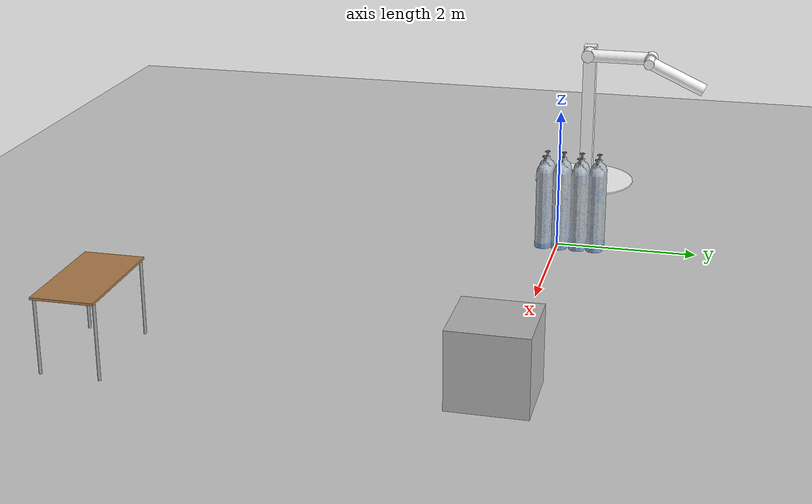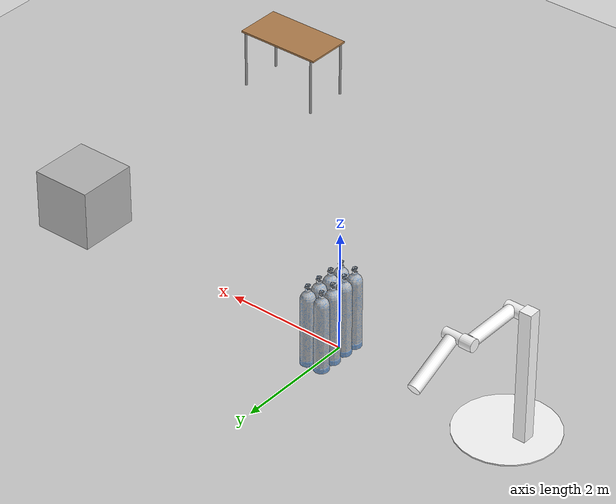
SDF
<sdf version="1.7">
 <world name="default">
  <light type="point" name="point">
   <pose>0 2 2 0 0 0</pose>
   <diffuse>1 0 0 1</diffuse>
   <specular>.1 .1 .1 1</specular>
   <attenuation>
    <range>20</range>
    <linear>0.2</linear>
    <constant>0.8</constant>
    <quadratic>0.01</quadratic>
   </attenuation>
   <cast_shadows>false</cast_shadows>
  </light>
  <include><uri>model://sun</uri></include>
  <include><uri>model://ground_plane</uri></include>
  <include><uri>model://gas</uri></include>
  <include>
   <uri>model://double_pendulum_with_base</uri>
   <name>pendulum_thick_mud</name>
   <pose>-3.0 0 0 0 0 0</pose>
  </include>
  <include><uri>model://table</uri><name>table</name><pose>5.0 -5.0 0.0 0 0 0</pose></include>
  <model name="box">
   <pose>5 0 0.5 0 0 0</pose>
   <link name="link">
    <collision name="collision"><geometry><box><size>1 1 1</size></box></geometry></collision>
    <visual name="visual">
     <geometry><box><size>1 1 1</size></box></geometry>
     <material><script>Gazebo/WoodPallet</script></material>
    </visual>
   </link>
  </model>
 </world>
</sdf>

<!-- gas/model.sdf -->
<sdf version="1.6">
  <model name="gas">
    <static>true</static>
    <link name="link">
      <collision name="collision">
        <geometry>
          <mesh>
            <scale>1 1 1</scale>
            <uri>model://gas/meshes/gas.dae</uri>
          </mesh>
        </geometry>
      </collision>
      <visual name="visual">
        <geometry>
          <mesh>
            <scale>1 1 1</scale>
            <uri>model://gas/meshes/gas.dae</uri>
          </mesh>
        </geometry>
      </visual>
    </link>
  </model>
</sdf>

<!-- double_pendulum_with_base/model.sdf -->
<sdf version="1.5">
  <model name="double_pendulum_with_base">
    <link name="base">
      <inertial>
        <mass>100</mass>
      </inertial>
      <visual name="vis_plate_on_ground">
        <pose>0 0 0.01 0 0 0</pose>
        <geometry>
          <cylinder>
            <radius>0.8</radius>
            <length>0.02</length>
          </cylinder>
        </geometry>
        <material><diffuse>1 1 1 1</diffuse><specular>0.1 0.1 0.1 1</specular></material>
      </visual>
      <visual name="vis_pole">
        <pose>-0.275 0 1.1 0 0 0</pose>
        <geometry>
          <box>
            <size>0.2 0.2 2.2</size>
          </box>
        </geometry>
        <material><diffuse>1 1 1 1</diffuse><specular>0.1 0.1 0.1 1</specular></material>
      </visual>
      <collision name="col_plate_on_ground">
        <pose>0 0 0.01 0 0 0</pose>
        <geometry>
          <cylinder>
            <radius>0.8</radius>
            <length>0.02</length>
          </cylinder>
        </geometry>
      </collision>
      <collision name="col_pole">
        <pose>-0.275 0 1.1 0 0 0</pose>
        <geometry>
          <box>
            <size>0.2 0.2 2.2</size>
          </box>
        </geometry>
      </collision>
    </link>
    <!-- upper link, length 1, IC -90 degrees -->
    <link name="upper_link">
      <pose>0 0 2.1 -1.5708 0 0</pose>
      <self_collide>0</self_collide>
      <inertial>
        <pose>0 0 0.5 0 0 0</pose>
      </inertial>
      <visual name="vis_upper_joint">
        <pose>-0.05 0 0 0 1.5708 0</pose>
        <geometry>
          <cylinder>
            <radius>0.1</radius>
            <length>0.3</length>
          </cylinder>
        </geometry>
        <material><diffuse>1 1 1 1</diffuse><specular>0.1 0.1 0.1 1</specular></material>
      </visual>
      <visual name="vis_lower_joint">
        <pose>0 0 1.0 0 1.5708 0</pose>
        <geometry>
          <cylinder>
            <radius>0.1</radius>
            <length>0.2</length>
          </cylinder>
        </geometry>
        <material><diffuse>1 1 1 1</diffuse><specular>0.1 0.1 0.1 1</specular></material>
      </visual>
      <visual name="vis_cylinder">
        <pose>0 0 0.5 0 0 0</pose>
        <geometry>
          <cylinder>
            <radius>0.1</radius>
            <length>0.9</length>
          </cylinder>
        </geometry>
        <material><diffuse>1 1 1 1</diffuse><specular>0.1 0.1 0.1 1</specular></material>
      </visual>
      <collision name="col_upper_joint">
        <pose>-0.05 0 0 0 1.5708 0</pose>
        <geometry>
          <cylinder>
            <radius>0.1</radius>
            <length>0.3</length>
          </cylinder>
        </geometry>
      </collision>
      <collision name="col_lower_joint">
        <pose>0 0 1.0 0 1.5708 0</pose>
        <geometry>
          <cylinder>
            <radius>0.1</radius>
            <length>0.2</length>
          </cylinder>
        </geometry>
      </collision>
      <collision name="col_cylinder">
        <pose>0 0 0.5 0 0 0</pose>
        <geometry>
          <cylinder>
            <radius>0.1</radius>
            <length>0.9</length>
          </cylinder>
        </geometry>
      </collision>
    </link>
    <!-- lower link, length 1, IC ~-120 degrees more -->
    <link name="lower_link">
      <pose>0.25 1.0 2.1 -2 0 0</pose>
      <self_collide>0</self_collide>
      <inertial>
        <pose>0 0 0.5 0 0 0</pose>
      </inertial>
      <visual name="vis_lower_joint">
        <pose>0 0 0 0 1.5708 0</pose>
        <geometry>
          <cylinder>
            <radius>0.08</radius>
            <length>0.3</length>
          </cylinder>
        </geometry>
        <material><diffuse>1 1 1 1</diffuse><specular>0.1 0.1 0.1 1</specular></material>
      </visual>
      <visual name="vis_cylinder">
        <pose>0 0 0.5 0 0 0</pose>
        <geometry>
          <cylinder>
            <radius>0.1</radius>
            <length>0.9</length>
          </cylinder>
        </geometry>
        <material><diffuse>1 1 1 1</diffuse><specular>0.1 0.1 0.1 1</specular></material>
      </visual>
      <collision name="col_lower_joint">
        <pose>0 0 0 0 1.5708 0</pose>
        <geometry>
          <cylinder>
            <radius>0.08</radius>
            <length>0.3</length>
          </cylinder>
        </geometry>
      </collision>
      <collision name="col_cylinder">
        <pose>0 0 0.5 0 0 0</pose>
        <geometry>
          <cylinder>
            <radius>0.1</radius>
            <length>0.9</length>
          </cylinder>
        </geometry>
      </collision>
    </link>
    <!-- pin joint for upper link, at origin of upper link -->
    <joint name="upper_joint" type="revolute">
      <parent>base</parent>
      <child>upper_link</child>
      <axis>
        <xyz>1.0 0 0</xyz>
      </axis>
    </joint>
    <!-- pin joint for lower link, at origin of child link -->
    <joint name="lower_joint" type="revolute">
      <parent>upper_link</parent>
      <child>lower_link</child>
      <axis>
        <xyz>1.0 0 0</xyz>
      </axis>
    </joint>
  </model>
</sdf>

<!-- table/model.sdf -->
<sdf version="1.5">
  <model name="table">
    <static>true</static>
    <link name="link">
      <collision name="surface">
        <pose>0 0 1.0 0 0 0</pose>
        <geometry>
          <box>
            <size>1.5 0.8 0.03</size>
          </box>
        </geometry>
        <surface>
          <friction>
            <ode>
              <mu>0.6</mu>
              <mu2>0.6</mu2>
            </ode>
          </friction>
        </surface>
      </collision>
      <visual name="visual1">
        <pose>0 0 1.0 0 0 0</pose>
        <geometry>
          <box>
            <size>1.5 0.8 0.03</size>
          </box>
        </geometry>
        <material>
          <script>
            <uri>model://media/materials/scripts/gazebo.material</uri>
            <name>Gazebo/Wood</name>
          </script>
        </material>
      </visual>
      <collision name="front_left_leg">
        <pose>0.68 0.38 0.5 0 0 0</pose>
        <geometry>
          <cylinder>
            <radius>0.02</radius>
            <length>1.0</length>
          </cylinder>
        </geometry>
      </collision>
      <visual name="front_left_leg">
        <pose>0.68 0.38 0.5 0 0 0</pose>
        <geometry>
          <cylinder>
            <radius>0.02</radius>
            <length>1.0</length>
          </cylinder>
        </geometry>
        <material>
          <script>
            <uri>model://media/materials/scripts/gazebo.material</uri>
            <name>Gazebo/Grey</name>
          </script>
        </material>
      </visual>
      <collision name="front_right_leg">
        <pose>0.68 -0.38 0.5 0 0 0</pose>
        <geometry>
          <cylinder>
            <radius>0.02</radius>
            <length>1.0</length>
          </cylinder>
        </geometry>
      </collision>
      <visual name="front_right_leg">
        <pose>0.68 -0.38 0.5 0 0 0</pose>
        <geometry>
          <cylinder>
            <radius>0.02</radius>
            <length>1.0</length>
          </cylinder>
        </geometry>
        <material>
          <script>
            <uri>model://media/materials/scripts/gazebo.material</uri>
            <name>Gazebo/Grey</name>
          </script>
        </material>
      </visual>
      <collision name="back_right_leg">
        <pose>-0.68 -0.38 0.5 0 0 0</pose>
        <geometry>
          <cylinder>
            <radius>0.02</radius>
            <length>1.0</length>
          </cylinder>
        </geometry>
      </collision>
      <visual name="back_right_leg">
        <pose>-0.68 -0.38 0.5 0 0 0</pose>
        <geometry>
          <cylinder>
            <radius>0.02</radius>
            <length>1.0</length>
          </cylinder>
        </geometry>
        <material>
          <script>
            <uri>model://media/materials/scripts/gazebo.material</uri>
            <name>Gazebo/Grey</name>
          </script>
        </material>
      </visual>
      <collision name="back_left_leg">
        <pose>-0.68 0.38 0.5 0 0 0</pose>
        <geometry>
          <cylinder>
            <radius>0.02</radius>
            <length>1.0</length>
          </cylinder>
        </geometry>
      </collision>
      <visual name="back_left_leg">
        <pose>-0.68 0.38 0.5 0 0 0</pose>
        <geometry>
          <cylinder>
            <radius>0.02</radius>
            <length>1.0</length>
          </cylinder>
        </geometry>
        <material>
          <script>
            <uri>model://media/materials/scripts/gazebo.material</uri>
            <name>Gazebo/Grey</name>
          </script>
        </material>
      </visual>
    </link>
  </model>
</sdf>
